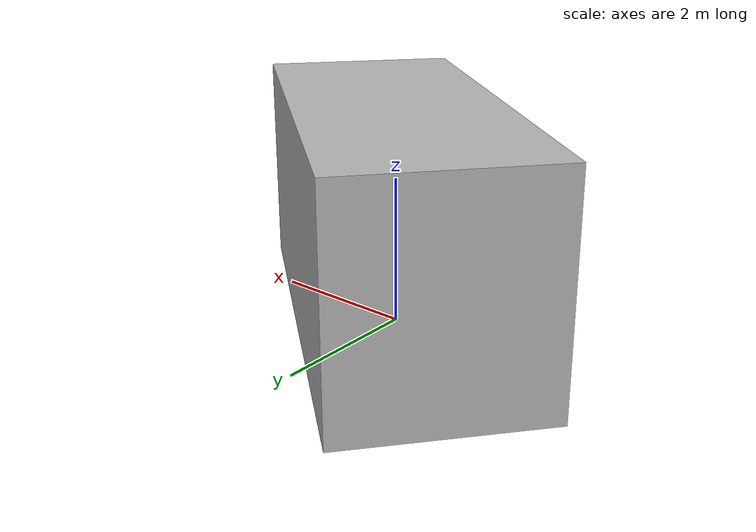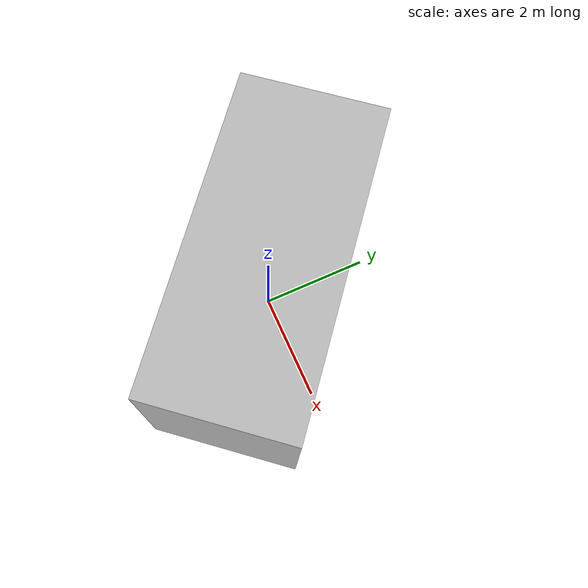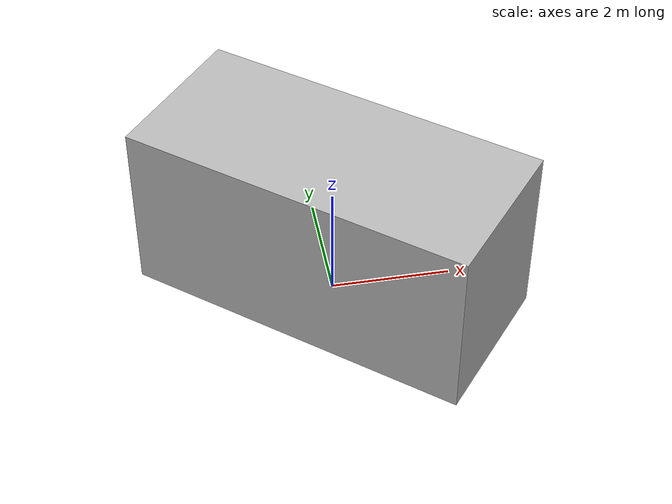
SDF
<?xml version="1.0" ?>
<sdf version="1.7">
  <model name="building_1527_actual_a_casa">
    <static>true</static>
    <link name="building_link">
      <visual name="building_visual">
        <geometry>
          <mesh>
            <uri>model://building_1527_actual_a_casa/meshes/construction_1527_actual_A_Casa_h3m.obj</uri>
          </mesh>
        </geometry>
      </visual>
    <collision name="building_collision">
      <geometry>
        <mesh>
          <uri>model://building_1527_actual_a_casa/meshes/construction_1527_actual_A_Casa_h3m.obj</uri>
        </mesh>
      </geometry>
    </collision>
    </link>
  </model>
</sdf>
